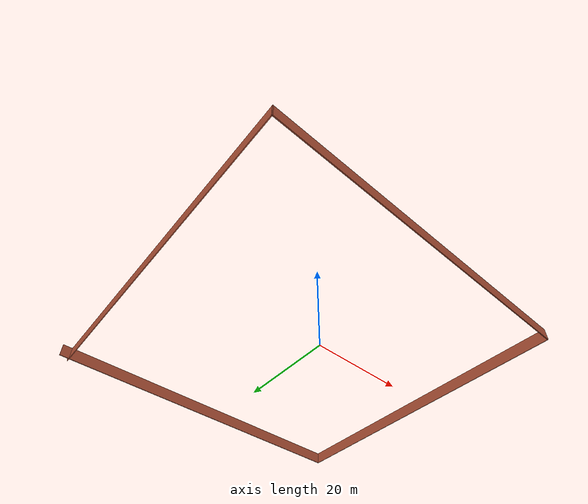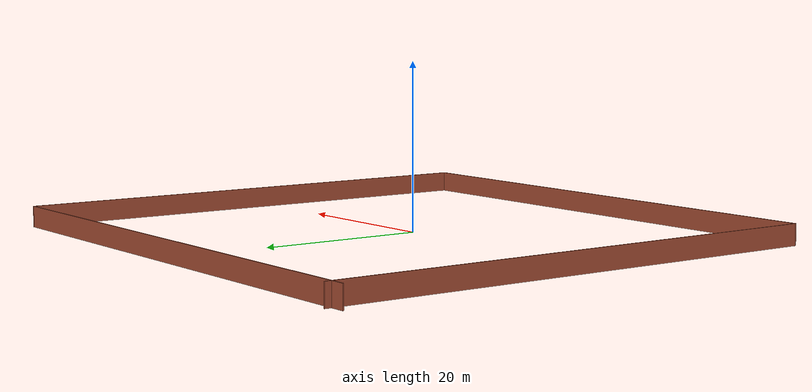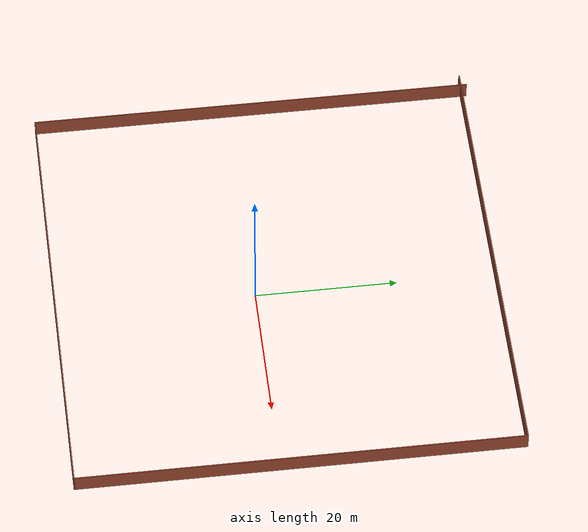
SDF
<?xml version='1.0'?>
<sdf version='1.6'>
  <model name='test.world'>
    <pose frame=''>-2.37461 3.24477 0 0 -0 0</pose>
    <link name='Wall_0'>
      <collision name='Wall_0_Collision'>
        <geometry>
          <box>
            <size>65.5 0.15 2.5</size>
          </box>
        </geometry>
        <pose frame=''>0 0 1.25 0 -0 0</pose>
      </collision>
      <visual name='Wall_0_Visual'>
        <pose frame=''>0 0 1.25 0 -0 0</pose>
        <geometry>
          <box>
            <size>65.5 0.15 2.5</size>
          </box>
        </geometry>
        <material>
          <script>
            <uri>file://media/materials/scripts/gazebo.material</uri>
            <name>Gazebo/Bricks</name>
          </script>
          <ambient>1 1 1 1</ambient>
        </material>
      </visual>
      <pose frame=''>-1e-06 30.55 0 0 -0 0</pose>
    </link>
    <link name='Wall_1'>
      <collision name='Wall_1_Collision'>
        <geometry>
          <box>
            <size>62 0.15 2.5</size>
          </box>
        </geometry>
        <pose frame=''>0 0 1.25 0 -0 0</pose>
      </collision>
      <visual name='Wall_1_Visual'>
        <pose frame=''>0 0 1.25 0 -0 0</pose>
        <geometry>
          <box>
            <size>62 0.15 2.5</size>
          </box>
        </geometry>
        <material>
          <script>
            <uri>file://media/materials/scripts/gazebo.material</uri>
            <name>Gazebo/Bricks</name>
          </script>
          <ambient>1 1 1 1</ambient>
        </material>
      </visual>
      <pose frame=''>32.675 -0.375 0 0 0 -1.5708</pose>
    </link>
    <link name='Wall_2'>
      <collision name='Wall_2_Collision'>
        <geometry>
          <box>
            <size>63.75 0.15 2.5</size>
          </box>
        </geometry>
        <pose frame=''>0 0 1.25 0 -0 0</pose>
      </collision>
      <visual name='Wall_2_Visual'>
        <pose frame=''>0 0 1.25 0 -0 0</pose>
        <geometry>
          <box>
            <size>63.75 0.15 2.5</size>
          </box>
        </geometry>
        <material>
          <script>
            <uri>file://media/materials/scripts/gazebo.material</uri>
            <name>Gazebo/Bricks</name>
          </script>
          <ambient>1 1 1 1</ambient>
        </material>
      </visual>
      <pose frame=''>0.874999 -31.3 0 0 -0 3.14159</pose>
    </link>
    <link name='Wall_3'>
      <collision name='Wall_3_Collision'>
        <geometry>
          <box>
            <size>62.75 0.15 2.5</size>
          </box>
        </geometry>
        <pose frame=''>0 0 1.25 0 -0 0</pose>
      </collision>
      <visual name='Wall_3_Visual'>
        <pose frame=''>0 0 1.25 0 -0 0</pose>
        <geometry>
          <box>
            <size>62.75 0.15 2.5</size>
          </box>
        </geometry>
        <material>
          <script>
            <uri>file://media/materials/scripts/gazebo.material</uri>
            <name>Gazebo/Bricks</name>
          </script>
          <ambient>1 1 1 1</ambient>
        </material>
      </visual>
      <pose frame=''>-30.925 0 0 0 -0 1.5708</pose>
    </link>
    <static>1</static>
  </model>
</sdf>
